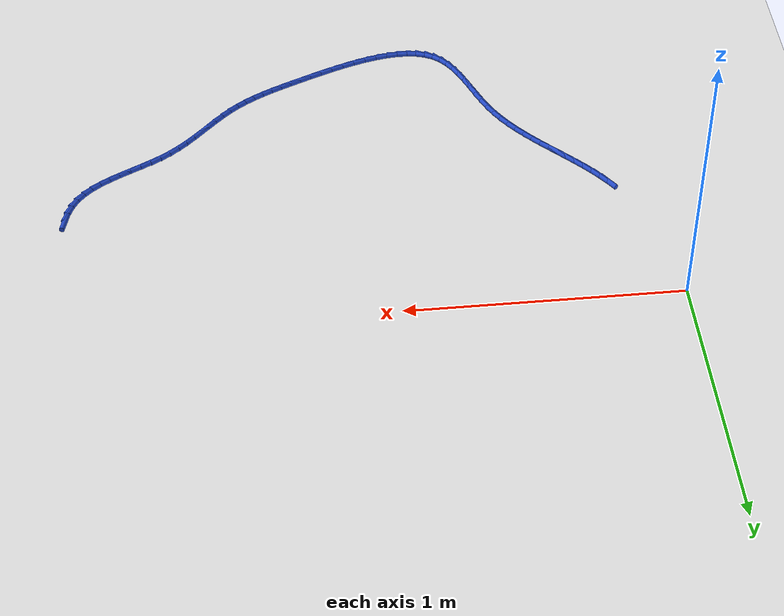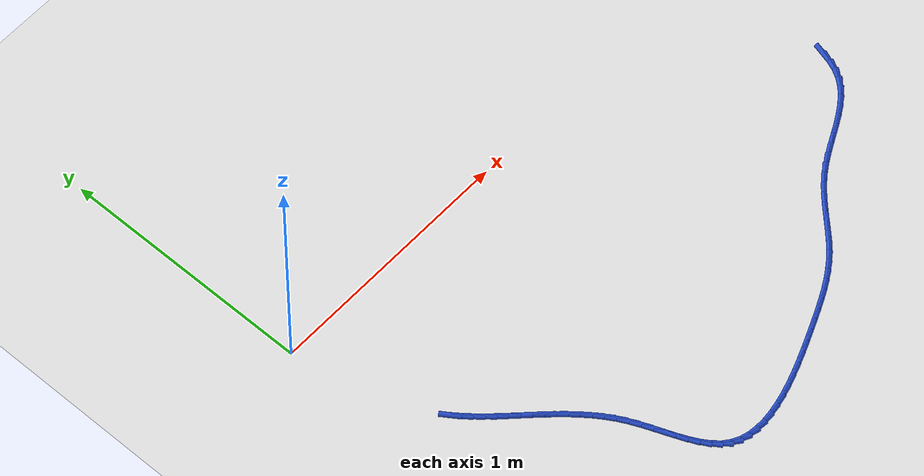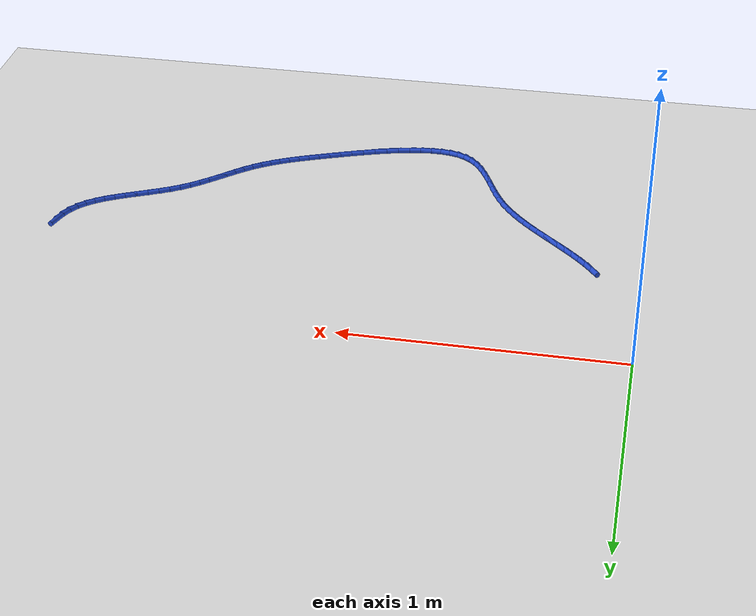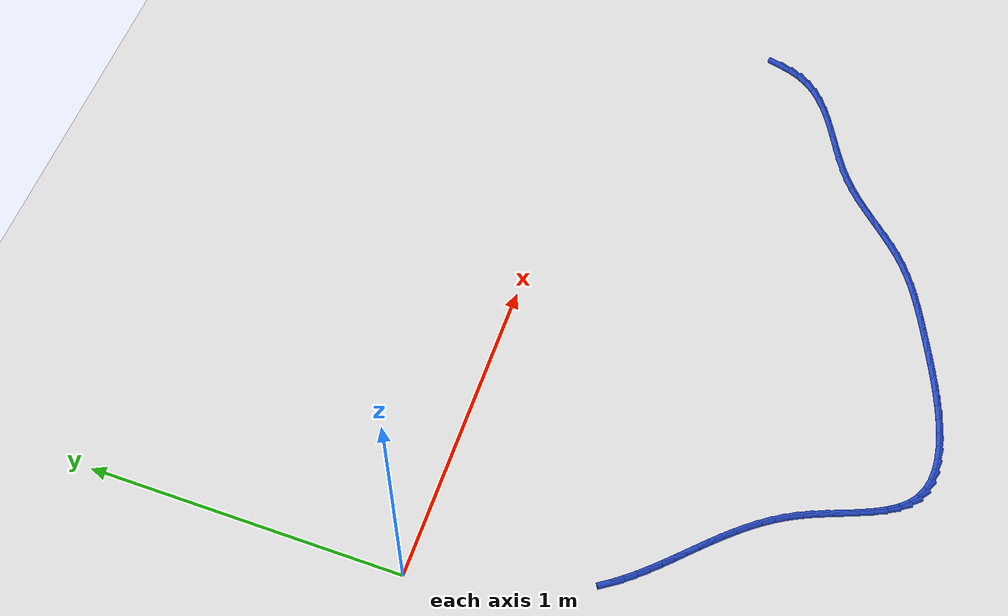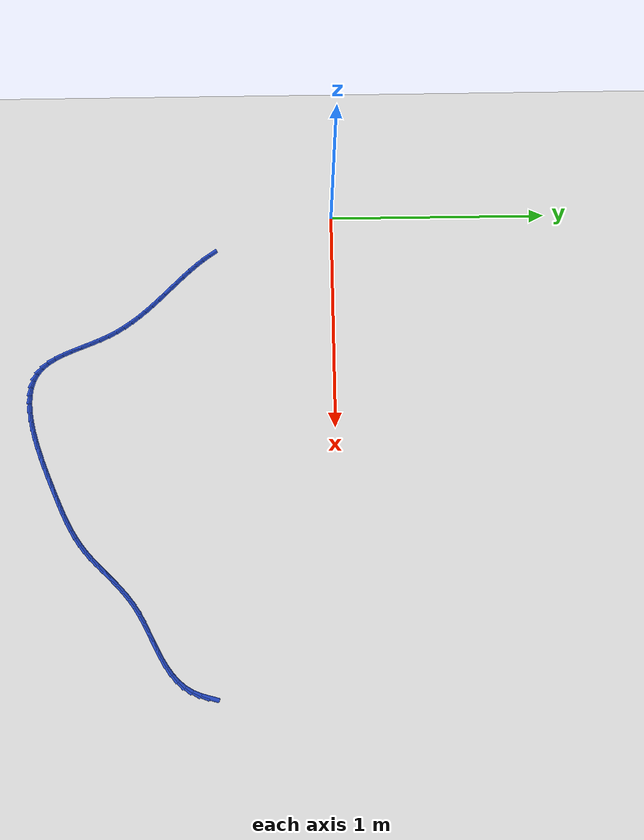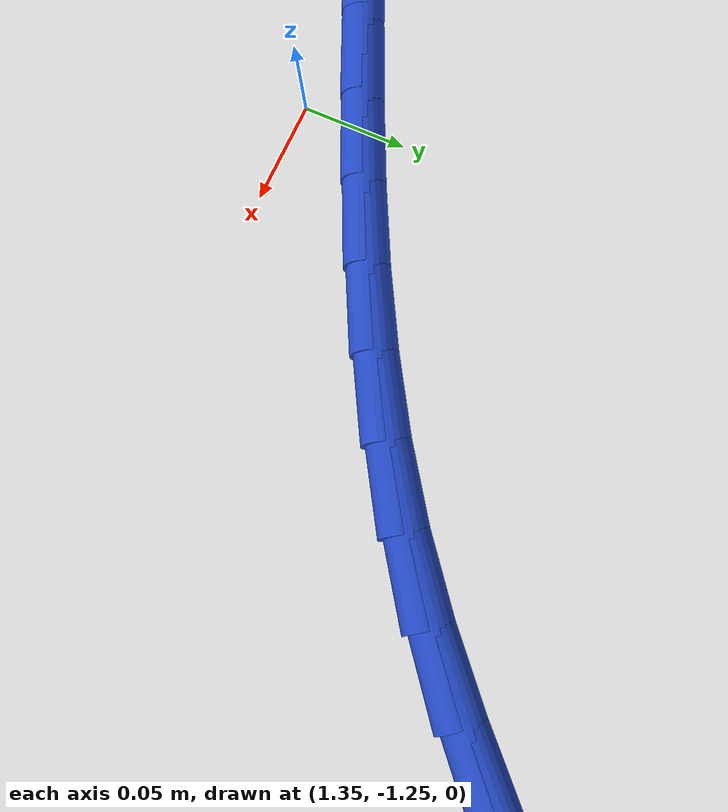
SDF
<sdf version="1.6">
 <world name="default">
  <model name="ground_plane">
   <static>1</static>
   <link name="link">
    <collision name="collision">
     <geometry><plane><normal>0 0 1</normal><size>100 100</size></plane></geometry>
     <surface><friction><ode><mu>100</mu><mu2>50</mu2></ode></friction></surface>
    </collision>
    <visual name="visual">
     <cast_shadows>0</cast_shadows>
     <geometry><plane><normal>0 0 1</normal><size>100 100</size></plane></geometry>
     <material>
      <script><uri>file://media/materials/scripts/gazebo.material</uri><name>Gazebo/WhiteGlow</name></script>
     </material>
    </visual>
   </link>
  </model>
  <model name="line">
   <link name="link_119">
    <pose>2.165678816490199 -0.5529607200042893 0.01 0 1.57 1.3038465819567113</pose>
    <collision name="collision">
     <geometry><cylinder><radius>0.01</radius><length>0.08</length></cylinder></geometry>
    </collision>
    <visual name="visual">
     <material>
      <script><name>Gazebo/Blue</name><uri>file://media/materials/scripts/gazebo.material</uri></script>
     </material>
     <geometry><cylinder><radius>0.01</radius><length>0.08</length></cylinder></geometry>
    </visual>
   </link>
   <link name="link_120">
    <pose>2.1549382510173456 -0.5922348280297937 0.01 0 1.57 1.1849890345842276</pose>
    <collision name="collision">
     <geometry><cylinder><radius>0.01</radius><length>0.08</length></cylinder></geometry>
    </collision>
    <visual name="visual">
     <material>
      <script><name>Gazebo/Blue</name><uri>file://media/materials/scripts/gazebo.material</uri></script>
     </material>
     <geometry><cylinder><radius>0.01</radius><length>0.08</length></cylinder></geometry>
    </visual>
   </link>
   <link name="link_121">
    <pose>2.1401317074821624 -0.6286895844554218 0.01 0 1.57 1.0369615029037529</pose>
    <collision name="collision">
     <geometry><cylinder><radius>0.01</radius><length>0.08</length></cylinder></geometry>
    </collision>
    <visual name="visual">
     <material>
      <script><name>Gazebo/Blue</name><uri>file://media/materials/scripts/gazebo.material</uri></script>
     </material>
     <geometry><cylinder><radius>0.01</radius><length>0.08</length></cylinder></geometry>
    </visual>
   </link>
   <link name="link_122">
    <pose>2.1206914307939337 -0.6615790042426363 0.01 0 1.57 0.8798860520545387</pose>
    <collision name="collision">
     <geometry><cylinder><radius>0.01</radius><length>0.08</length></cylinder></geometry>
    </collision>
    <visual name="visual">
     <material>
      <script><name>Gazebo/Blue</name><uri>file://media/materials/scripts/gazebo.material</uri></script>
     </material>
     <geometry><cylinder><radius>0.01</radius><length>0.08</length></cylinder></geometry>
    </visual>
   </link>
   <link name="link_123">
    <pose>2.0965847565018136 -0.6907332177284001 0.01 0 1.57 0.7457918632671487</pose>
    <collision name="collision">
     <geometry><cylinder><radius>0.01</radius><length>0.08</length></cylinder></geometry>
    </collision>
    <visual name="visual">
     <material>
      <script><name>Gazebo/Blue</name><uri>file://media/materials/scripts/gazebo.material</uri></script>
     </material>
     <geometry><cylinder><radius>0.01</radius><length>0.08</length></cylinder></geometry>
    </visual>
   </link>
   <link name="link_124">
    <pose>2.068459195376105 -0.7167146786613408 0.01 0 1.57 0.6400086010144025</pose>
    <collision name="collision">
     <geometry><cylinder><radius>0.01</radius><length>0.08</length></cylinder></geometry>
    </collision>
    <visual name="visual">
     <material>
      <script><name>Gazebo/Blue</name><uri>file://media/materials/scripts/gazebo.material</uri></script>
     </material>
     <geometry><cylinder><radius>0.01</radius><length>0.08</length></cylinder></geometry>
    </visual>
   </link>
   <link name="link_125">
    <pose>2.037006244468867 -0.7401331994455039 0.01 0 1.57 0.5619645637278768</pose>
    <collision name="collision">
     <geometry><cylinder><radius>0.01</radius><length>0.08</length></cylinder></geometry>
    </collision>
    <visual name="visual">
     <material>
      <script><name>Gazebo/Blue</name><uri>file://media/materials/scripts/gazebo.material</uri></script>
     </material>
     <geometry><cylinder><radius>0.01</radius><length>0.08</length></cylinder></geometry>
    </visual>
   </link>
   <link name="link_126">
    <pose>2.0029174008321577 -0.7615985924849348 0.01 0 1.57 0.509293092011991</pose>
    <collision name="collision">
     <geometry><cylinder><radius>0.01</radius><length>0.08</length></cylinder></geometry>
    </collision>
    <visual name="visual">
     <material>
      <script><name>Gazebo/Blue</name><uri>file://media/materials/scripts/gazebo.material</uri></script>
     </material>
     <geometry><cylinder><radius>0.01</radius><length>0.08</length></cylinder></geometry>
    </visual>
   </link>
   <link name="link_127">
    <pose>1.966884161518037 -0.7817206701836791 0.01 0 1.57 0.4795147115686511</pose>
    <collision name="collision">
     <geometry><cylinder><radius>0.01</radius><length>0.08</length></cylinder></geometry>
    </collision>
    <visual name="visual">
     <material>
      <script><name>Gazebo/Blue</name><uri>file://media/materials/scripts/gazebo.material</uri></script>
     </material>
     <geometry><cylinder><radius>0.01</radius><length>0.08</length></cylinder></geometry>
    </visual>
   </link>
   <link name="link_128">
    <pose>1.9295980235785635 -0.8011092449457824 0.01 0 1.57 0.4708318705083907</pose>
    <collision name="collision">
     <geometry><cylinder><radius>0.01</radius><length>0.08</length></cylinder></geometry>
    </collision>
    <visual name="visual">
     <material>
      <script><name>Gazebo/Blue</name><uri>file://media/materials/scripts/gazebo.material</uri></script>
     </material>
     <geometry><cylinder><radius>0.01</radius><length>0.08</length></cylinder></geometry>
    </visual>
   </link>
   <link name="link_129">
    <pose>1.891750484065797 -0.8203741291752901 0.01 0 1.57 0.48239365470131074</pose>
    <collision name="collision">
     <geometry><cylinder><radius>0.01</radius><length>0.08</length></cylinder></geometry>
    </collision>
    <visual name="visual">
     <material>
      <script><name>Gazebo/Blue</name><uri>file://media/materials/scripts/gazebo.material</uri></script>
     </material>
     <geometry><cylinder><radius>0.01</radius><length>0.08</length></cylinder></geometry>
    </visual>
   </link>
   <link name="link_130">
    <pose>1.8540330400317961 -0.8401251352762479 0.01 0 1.57 0.5143026540021608</pose>
    <collision name="collision">
     <geometry><cylinder><radius>0.01</radius><length>0.08</length></cylinder></geometry>
    </collision>
    <visual name="visual">
     <material>
      <script><name>Gazebo/Blue</name><uri>file://media/materials/scripts/gazebo.material</uri></script>
     </material>
     <geometry><cylinder><radius>0.01</radius><length>0.08</length></cylinder></geometry>
    </visual>
   </link>
   <link name="link_131">
    <pose>1.81713718852862 -0.8609720756527015 0.01 0 1.57 0.5674607827327658</pose>
    <collision name="collision">
     <geometry><cylinder><radius>0.01</radius><length>0.08</length></cylinder></geometry>
    </collision>
    <visual name="visual">
     <material>
      <script><name>Gazebo/Blue</name><uri>file://media/materials/scripts/gazebo.material</uri></script>
     </material>
     <geometry><cylinder><radius>0.01</radius><length>0.08</length></cylinder></geometry>
    </visual>
   </link>
   <link name="link_132">
    <pose>1.7817544266083274 -0.8835247627086958 0.01 0 1.57 0.6387018153974733</pose>
    <collision name="collision">
     <geometry><cylinder><radius>0.01</radius><length>0.08</length></cylinder></geometry>
    </collision>
    <visual name="visual">
     <material>
      <script><name>Gazebo/Blue</name><uri>file://media/materials/scripts/gazebo.material</uri></script>
     </material>
     <geometry><cylinder><radius>0.01</radius><length>0.08</length></cylinder></geometry>
    </visual>
   </link>
   <link name="link_133">
    <pose>1.7484459371735086 -0.9082572468248192 0.01 0 1.57 0.7030364340273008</pose>
    <collision name="collision">
     <geometry><cylinder><radius>0.01</radius><length>0.08</length></cylinder></geometry>
    </collision>
    <visual name="visual">
     <material>
      <script><name>Gazebo/Blue</name><uri>file://media/materials/scripts/gazebo.material</uri></script>
     </material>
     <geometry><cylinder><radius>0.01</radius><length>0.08</length></cylinder></geometry>
    </visual>
   </link>
   <link name="link_134">
    <pose>1.7170365607289237 -0.9348764526758623 0.01 0 1.57 0.750860329333367</pose>
    <collision name="collision">
     <geometry><cylinder><radius>0.01</radius><length>0.08</length></cylinder></geometry>
    </collision>
    <visual name="visual">
     <material>
      <script><name>Gazebo/Blue</name><uri>file://media/materials/scripts/gazebo.material</uri></script>
     </material>
     <geometry><cylinder><radius>0.01</radius><length>0.08</length></cylinder></geometry>
    </visual>
   </link>
   <link name="link_135">
    <pose>1.6870927720443096 -0.9628201380416795 0.01 0 1.57 0.78181637285562</pose>
    <collision name="collision">
     <geometry><cylinder><radius>0.01</radius><length>0.08</length></cylinder></geometry>
    </collision>
    <visual name="visual">
     <material>
      <script><name>Gazebo/Blue</name><uri>file://media/materials/scripts/gazebo.material</uri></script>
     </material>
     <geometry><cylinder><radius>0.01</radius><length>0.08</length></cylinder></geometry>
    </visual>
   </link>
   <link name="link_136">
    <pose>1.6581807658942365 -0.9915257690015645 0.01 0 1.57 0.7957267611966407</pose>
    <collision name="collision">
     <geometry><cylinder><radius>0.01</radius><length>0.08</length></cylinder></geometry>
    </collision>
    <visual name="visual">
     <material>
      <script><name>Gazebo/Blue</name><uri>file://media/materials/scripts/gazebo.material</uri></script>
     </material>
     <geometry><cylinder><radius>0.01</radius><length>0.08</length></cylinder></geometry>
    </visual>
   </link>
   <link name="link_137">
    <pose>1.629866737053275 -1.020430811634813 0.01 0 1.57 0.7923137585358598</pose>
    <collision name="collision">
     <geometry><cylinder><radius>0.01</radius><length>0.08</length></cylinder></geometry>
    </collision>
    <visual name="visual">
     <material>
      <script><name>Gazebo/Blue</name><uri>file://media/materials/scripts/gazebo.material</uri></script>
     </material>
     <geometry><cylinder><radius>0.01</radius><length>0.08</length></cylinder></geometry>
    </visual>
   </link>
   <link name="link_138">
    <pose>1.6017168802959956 -1.048972732020719 0.01 0 1.57 0.7710649811614259</pose>
    <collision name="collision">
     <geometry><cylinder><radius>0.01</radius><length>0.08</length></cylinder></geometry>
    </collision>
    <visual name="visual">
     <material>
      <script><name>Gazebo/Blue</name><uri>file://media/materials/scripts/gazebo.material</uri></script>
     </material>
     <geometry><cylinder><radius>0.01</radius><length>0.08</length></cylinder></geometry>
    </visual>
   </link>
   <link name="link_139">
    <pose>1.5732973903969687 -1.0765889962385773 0.01 0 1.57 0.7312466353373269</pose>
    <collision name="collision">
     <geometry><cylinder><radius>0.01</radius><length>0.08</length></cylinder></geometry>
    </collision>
    <visual name="visual">
     <material>
      <script><name>Gazebo/Blue</name><uri>file://media/materials/scripts/gazebo.material</uri></script>
     </material>
     <geometry><cylinder><radius>0.01</radius><length>0.08</length></cylinder></geometry>
    </visual>
   </link>
   <link name="link_140">
    <pose>1.544174462130765 -1.1027170703676827 0.01 0 1.57 0.6729640810667431</pose>
    <collision name="collision">
     <geometry><cylinder><radius>0.01</radius><length>0.08</length></cylinder></geometry>
    </collision>
    <visual name="visual">
     <material>
      <script><name>Gazebo/Blue</name><uri>file://media/materials/scripts/gazebo.material</uri></script>
     </material>
     <geometry><cylinder><radius>0.01</radius><length>0.08</length></cylinder></geometry>
    </visual>
   </link>
   <link name="link_141">
    <pose>1.5139278123656326 -1.1268263748807035 0.01 0 1.57 0.6096983575979217</pose>
    <collision name="collision">
     <geometry><cylinder><radius>0.01</radius><length>0.08</length></cylinder></geometry>
    </collision>
    <visual name="visual">
     <material>
      <script><name>Gazebo/Blue</name><uri>file://media/materials/scripts/gazebo.material</uri></script>
     </material>
     <geometry><cylinder><radius>0.01</radius><length>0.08</length></cylinder></geometry>
    </visual>
   </link>
   <link name="link_142">
    <pose>1.482347787395512 -1.1488840738457722 0.01 0 1.57 0.5535399413404652</pose>
    <collision name="collision">
     <geometry><cylinder><radius>0.01</radius><length>0.08</length></cylinder></geometry>
    </collision>
    <visual name="visual">
     <material>
      <script><name>Gazebo/Blue</name><uri>file://media/materials/scripts/gazebo.material</uri></script>
     </material>
     <geometry><cylinder><radius>0.01</radius><length>0.08</length></cylinder></geometry>
    </visual>
   </link>
   <link name="link_143">
    <pose>1.449391228548575 -1.1692507798565062 0.01 0 1.57 0.506023273870381</pose>
    <collision name="collision">
     <geometry><cylinder><radius>0.01</radius><length>0.08</length></cylinder></geometry>
    </collision>
    <visual name="visual">
     <material>
      <script><name>Gazebo/Blue</name><uri>file://media/materials/scripts/gazebo.material</uri></script>
     </material>
     <geometry><cylinder><radius>0.01</radius><length>0.08</length></cylinder></geometry>
    </visual>
   </link>
   <link name="link_144">
    <pose>1.415019519101763 -1.1882978386977858 0.01 0 1.57 0.4677928704016635</pose>
    <collision name="collision">
     <geometry><cylinder><radius>0.01</radius><length>0.08</length></cylinder></geometry>
    </collision>
    <visual name="visual">
     <material>
      <script><name>Gazebo/Blue</name><uri>file://media/materials/scripts/gazebo.material</uri></script>
     </material>
     <geometry><cylinder><radius>0.01</radius><length>0.08</length></cylinder></geometry>
    </visual>
   </link>
   <link name="link_145">
    <pose>1.379194042332018 -1.206396596154492 0.01 0 1.57 0.43897468475304524</pose>
    <collision name="collision">
     <geometry><cylinder><radius>0.01</radius><length>0.08</length></cylinder></geometry>
    </collision>
    <visual name="visual">
     <material>
      <script><name>Gazebo/Blue</name><uri>file://media/materials/scripts/gazebo.material</uri></script>
     </material>
     <geometry><cylinder><radius>0.01</radius><length>0.08</length></cylinder></geometry>
    </visual>
   </link>
   <link name="link_146">
    <pose>1.3418761815162803 -1.223918398011505 0.01 0 1.57 0.4192992329119049</pose>
    <collision name="collision">
     <geometry><cylinder><radius>0.01</radius><length>0.08</length></cylinder></geometry>
    </collision>
    <visual name="visual">
     <material>
      <script><name>Gazebo/Blue</name><uri>file://media/materials/scripts/gazebo.material</uri></script>
     </material>
     <geometry><cylinder><radius>0.01</radius><length>0.08</length></cylinder></geometry>
    </visual>
   </link>
   <link name="link_147">
    <pose>1.3030273199314928 -1.2412345900537056 0.01 0 1.57 0.4082246243195699</pose>
    <collision name="collision">
     <geometry><cylinder><radius>0.01</radius><length>0.08</length></cylinder></geometry>
    </collision>
    <visual name="visual">
     <material>
      <script><name>Gazebo/Blue</name><uri>file://media/materials/scripts/gazebo.material</uri></script>
     </material>
     <geometry><cylinder><radius>0.01</radius><length>0.08</length></cylinder></geometry>
    </visual>
   </link>
   <link name="link_148">
    <pose>1.2626088686113968 -1.2587164626124494 0.01 0 1.57 0.4022287212309081</pose>
    <collision name="collision">
     <geometry><cylinder><radius>0.01</radius><length>0.08</length></cylinder></geometry>
    </collision>
    <visual name="visual">
     <material>
      <script><name>Gazebo/Blue</name><uri>file://media/materials/scripts/gazebo.material</uri></script>
     </material>
     <geometry><cylinder><radius>0.01</radius><length>0.08</length></cylinder></geometry>
    </visual>
   </link>
   <link name="link_149">
    <pose>1.2206711186497947 -1.2765577382655897 0.01 0 1.57 0.3919387423508584</pose>
    <collision name="collision">
     <geometry><cylinder><radius>0.01</radius><length>0.08</length></cylinder></geometry>
    </collision>
    <visual name="visual">
     <material>
      <script><name>Gazebo/Blue</name><uri>file://media/materials/scripts/gazebo.material</uri></script>
     </material>
     <geometry><cylinder><radius>0.01</radius><length>0.08</length></cylinder></geometry>
    </visual>
   </link>
   <link name="link_150">
    <pose>1.1775504982975484 -1.2943804845748015 0.01 0 1.57 0.37554189415330375</pose>
    <collision name="collision">
     <geometry><cylinder><radius>0.01</radius><length>0.08</length></cylinder></geometry>
    </collision>
    <visual name="visual">
     <material>
      <script><name>Gazebo/Blue</name><uri>file://media/materials/scripts/gazebo.material</uri></script>
     </material>
     <geometry><cylinder><radius>0.01</radius><length>0.08</length></cylinder></geometry>
    </visual>
   </link>
   <link name="link_151">
    <pose>1.133640905437484 -1.3116919542216168 0.01 0 1.57 0.35268576150205555</pose>
    <collision name="collision">
     <geometry><cylinder><radius>0.01</radius><length>0.08</length></cylinder></geometry>
    </collision>
    <visual name="visual">
     <material>
      <script><name>Gazebo/Blue</name><uri>file://media/materials/scripts/gazebo.material</uri></script>
     </material>
     <geometry><cylinder><radius>0.01</radius><length>0.08</length></cylinder></geometry>
    </visual>
   </link>
   <link name="link_152">
    <pose>1.0893362379524316 -1.3279993998875697 0.01 0 1.57 0.3226046826940589</pose>
    <collision name="collision">
     <geometry><cylinder><radius>0.01</radius><length>0.08</length></cylinder></geometry>
    </collision>
    <visual name="visual">
     <material>
      <script><name>Gazebo/Blue</name><uri>file://media/materials/scripts/gazebo.material</uri></script>
     </material>
     <geometry><cylinder><radius>0.01</radius><length>0.08</length></cylinder></geometry>
    </visual>
   </link>
   <link name="link_153">
    <pose>1.0450303937252172 -1.3428100742541913 0.01 0 1.57 0.2840703062573568</pose>
    <collision name="collision">
     <geometry><cylinder><radius>0.01</radius><length>0.08</length></cylinder></geometry>
    </collision>
    <visual name="visual">
     <material>
      <script><name>Gazebo/Blue</name><uri>file://media/materials/scripts/gazebo.material</uri></script>
     </material>
     <geometry><cylinder><radius>0.01</radius><length>0.08</length></cylinder></geometry>
    </visual>
   </link>
   <link name="link_154">
    <pose>1.00111727063867 -1.3556312300030158 0.01 0 1.57 0.23529346337358908</pose>
    <collision name="collision">
     <geometry><cylinder><radius>0.01</radius><length>0.08</length></cylinder></geometry>
    </collision>
    <visual name="visual">
     <material>
      <script><name>Gazebo/Blue</name><uri>file://media/materials/scripts/gazebo.material</uri></script>
     </material>
     <geometry><cylinder><radius>0.01</radius><length>0.08</length></cylinder></geometry>
    </visual>
   </link>
   <link name="link_155">
    <pose>0.9579907665756168 -1.365970119815574 0.01 0 1.57 0.17378525205652942</pose>
    <collision name="collision">
     <geometry><cylinder><radius>0.01</radius><length>0.08</length></cylinder></geometry>
    </collision>
    <visual name="visual">
     <material>
      <script><name>Gazebo/Blue</name><uri>file://media/materials/scripts/gazebo.material</uri></script>
     </material>
     <geometry><cylinder><radius>0.01</radius><length>0.08</length></cylinder></geometry>
    </visual>
   </link>
   <link name="link_156">
    <pose>0.9160447794188864 -1.3733339963734 0.01 0 1.57 0.09620848093766571</pose>
    <collision name="collision">
     <geometry><cylinder><radius>0.01</radius><length>0.08</length></cylinder></geometry>
    </collision>
    <visual name="visual">
     <material>
      <script><name>Gazebo/Blue</name><uri>file://media/materials/scripts/gazebo.material</uri></script>
     </material>
     <geometry><cylinder><radius>0.01</radius><length>0.08</length></cylinder></geometry>
    </visual>
   </link>
   <link name="link_157">
    <pose>0.8756732070513062 -1.3772301123580257 0.01 0 1.57 -0.0016767286737736948</pose>
    <collision name="collision">
     <geometry><cylinder><radius>0.01</radius><length>0.08</length></cylinder></geometry>
    </collision>
    <visual name="visual">
     <material>
      <script><name>Gazebo/Blue</name><uri>file://media/materials/scripts/gazebo.material</uri></script>
     </material>
     <geometry><cylinder><radius>0.01</radius><length>0.08</length></cylinder></geometry>
    </visual>
   </link>
   <link name="link_158">
    <pose>0.8372699473557043 -1.3771657204509835 0.01 0 1.57 -0.12469690728914873</pose>
    <collision name="collision">
     <geometry><cylinder><radius>0.01</radius><length>0.08</length></cylinder></geometry>
    </collision>
    <visual name="visual">
     <material>
      <script><name>Gazebo/Blue</name><uri>file://media/materials/scripts/gazebo.material</uri></script>
     </material>
     <geometry><cylinder><radius>0.01</radius><length>0.08</length></cylinder></geometry>
    </visual>
   </link>
   <link name="link_159">
    <pose>0.8012288982149083 -1.3726480733338067 0.01 0 1.57 -0.27701222140242343</pose>
    <collision name="collision">
     <geometry><cylinder><radius>0.01</radius><length>0.08</length></cylinder></geometry>
    </collision>
    <visual name="visual">
     <material>
      <script><name>Gazebo/Blue</name><uri>file://media/materials/scripts/gazebo.material</uri></script>
     </material>
     <geometry><cylinder><radius>0.01</radius><length>0.08</length></cylinder></geometry>
    </visual>
   </link>
   <link name="link_160">
    <pose>0.7679439575117466 -1.3631844236880277 0.01 0 1.57 -0.459255919323022</pose>
    <collision name="collision">
     <geometry><cylinder><radius>0.01</radius><length>0.08</length></cylinder></geometry>
    </collision>
    <visual name="visual">
     <material>
      <script><name>Gazebo/Blue</name><uri>file://media/materials/scripts/gazebo.material</uri></script>
     </material>
     <geometry><cylinder><radius>0.01</radius><length>0.08</length></cylinder></geometry>
    </visual>
   </link>
   <link name="link_161">
    <pose>0.7378090231290464 -1.3482820241951785 0.01 0 1.57 -0.663655226764171</pose>
    <collision name="collision">
     <geometry><cylinder><radius>0.01</radius><length>0.08</length></cylinder></geometry>
    </collision>
    <visual name="visual">
     <material>
      <script><name>Gazebo/Blue</name><uri>file://media/materials/scripts/gazebo.material</uri></script>
     </material>
     <geometry><cylinder><radius>0.01</radius><length>0.08</length></cylinder></geometry>
    </visual>
   </link>
   <link name="link_162">
    <pose>0.711199263991687 -1.3274737643067085 0.01 0 1.57 -0.851803574735139</pose>
    <collision name="collision">
     <geometry><cylinder><radius>0.01</radius><length>0.08</length></cylinder></geometry>
    </collision>
    <visual name="visual">
     <material>
      <script><name>Gazebo/Blue</name><uri>file://media/materials/scripts/gazebo.material</uri></script>
     </material>
     <geometry><cylinder><radius>0.01</radius><length>0.08</length></cylinder></geometry>
    </visual>
   </link>
   <link name="link_163">
    <pose>0.6879976220997687 -1.3009663087289784 0.01 0 1.57 -0.9919464641128584</pose>
    <collision name="collision">
     <geometry><cylinder><radius>0.01</radius><length>0.08</length></cylinder></geometry>
    </collision>
    <visual name="visual">
     <material>
      <script><name>Gazebo/Blue</name><uri>file://media/materials/scripts/gazebo.material</uri></script>
     </material>
     <geometry><cylinder><radius>0.01</radius><length>0.08</length></cylinder></geometry>
    </visual>
   </link>
   <link name="link_164">
    <pose>0.667558033914307 -1.2696904411143246 0.01 0 1.57 -1.0888285169567165</pose>
    <collision name="collision">
     <geometry><cylinder><radius>0.01</radius><length>0.08</length></cylinder></geometry>
    </collision>
    <visual name="visual">
     <material>
      <script><name>Gazebo/Blue</name><uri>file://media/materials/scripts/gazebo.material</uri></script>
     </material>
     <geometry><cylinder><radius>0.01</radius><length>0.08</length></cylinder></geometry>
    </visual>
   </link>
   <link name="link_165">
    <pose>0.6492083392401554 -1.2346126670154336 0.01 0 1.57 -1.1507748148180441</pose>
    <collision name="collision">
     <geometry><cylinder><radius>0.01</radius><length>0.08</length></cylinder></geometry>
    </collision>
    <visual name="visual">
     <material>
      <script><name>Gazebo/Blue</name><uri>file://media/materials/scripts/gazebo.material</uri></script>
     </material>
     <geometry><cylinder><radius>0.01</radius><length>0.08</length></cylinder></geometry>
    </visual>
   </link>
   <link name="link_166">
    <pose>0.6322763778821677 -1.1966994919849936 0.01 0 1.57 -1.1843760534590244</pose>
    <collision name="collision">
     <geometry><cylinder><radius>0.01</radius><length>0.08</length></cylinder></geometry>
    </collision>
    <visual name="visual">
     <material>
      <script><name>Gazebo/Blue</name><uri>file://media/materials/scripts/gazebo.material</uri></script>
     </material>
     <geometry><cylinder><radius>0.01</radius><length>0.08</length></cylinder></geometry>
    </visual>
   </link>
   <link name="link_167">
    <pose>0.6160899896451976 -1.1569174215756926 0.01 0 1.57 -1.193701987705666</pose>
    <collision name="collision">
     <geometry><cylinder><radius>0.01</radius><length>0.08</length></cylinder></geometry>
    </collision>
    <visual name="visual">
     <material>
      <script><name>Gazebo/Blue</name><uri>file://media/materials/scripts/gazebo.material</uri></script>
     </material>
     <geometry><cylinder><radius>0.01</radius><length>0.08</length></cylinder></geometry>
    </visual>
   </link>
   <link name="link_168">
    <pose>0.5999770143340978 -1.1162329613402155 0.01 0 1.57 -1.1804903596105911</pose>
    <collision name="collision">
     <geometry><cylinder><radius>0.01</radius><length>0.08</length></cylinder></geometry>
    </collision>
    <visual name="visual">
     <material>
      <script><name>Gazebo/Blue</name><uri>file://media/materials/scripts/gazebo.material</uri></script>
     </material>
     <geometry><cylinder><radius>0.01</radius><length>0.08</length></cylinder></geometry>
    </visual>
   </link>
   <link name="link_169">
    <pose>0.5832652917537225 -1.0756126168312519 0.01 0 1.57 -1.1444346989604441</pose>
    <collision name="collision">
     <geometry><cylinder><radius>0.01</radius><length>0.08</length></cylinder></geometry>
    </collision>
    <visual name="visual">
     <material>
      <script><name>Gazebo/Blue</name><uri>file://media/materials/scripts/gazebo.material</uri></script>
     </material>
     <geometry><cylinder><radius>0.01</radius><length>0.08</length></cylinder></geometry>
    </visual>
   </link>
   <link name="link_170">
    <pose>0.565282661708925 -1.0360228936014881 0.01 0 1.57 -1.085716642414434</pose>
    <collision name="collision">
     <geometry><cylinder><radius>0.01</radius><length>0.08</length></cylinder></geometry>
    </collision>
    <visual name="visual">
     <material>
      <script><name>Gazebo/Blue</name><uri>file://media/materials/scripts/gazebo.material</uri></script>
     </material>
     <geometry><cylinder><radius>0.01</radius><length>0.08</length></cylinder></geometry>
    </visual>
   </link>
   <link name="link_171">
    <pose>0.5454224712536788 -0.9983435628222947 0.01 0 1.57 -1.022202111139791</pose>
    <collision name="collision">
     <geometry><cylinder><radius>0.01</radius><length>0.08</length></cylinder></geometry>
    </collision>
    <visual name="visual">
     <material>
      <script><name>Gazebo/Blue</name><uri>file://media/materials/scripts/gazebo.material</uri></script>
     </material>
     <geometry><cylinder><radius>0.01</radius><length>0.08</length></cylinder></geometry>
    </visual>
   </link>
   <link name="link_172">
    <pose>0.5236424540048626 -0.9627071238742868 0.01 0 1.57 -0.9647635027645869</pose>
    <collision name="collision">
     <geometry><cylinder><radius>0.01</radius><length>0.08</length></cylinder></geometry>
    </collision>
    <visual name="visual">
     <material>
      <script><name>Gazebo/Blue</name><uri>file://media/materials/scripts/gazebo.material</uri></script>
     </material>
     <geometry><cylinder><radius>0.01</radius><length>0.08</length></cylinder></geometry>
    </visual>
   </link>
   <link name="link_173">
    <pose>0.5001885151994324 -0.9288645246683356 0.01 0 1.57 -0.9144626290440045</pose>
    <collision name="collision">
     <geometry><cylinder><radius>0.01</radius><length>0.08</length></cylinder></geometry>
    </collision>
    <visual name="visual">
     <material>
      <script><name>Gazebo/Blue</name><uri>file://media/materials/scripts/gazebo.material</uri></script>
     </material>
     <geometry><cylinder><radius>0.01</radius><length>0.08</length></cylinder></geometry>
    </visual>
   </link>
   <link name="link_174">
    <pose>0.4753088701614144 -0.8965636544618724 0.01 0 1.57 -0.8719912389653642</pose>
    <collision name="collision">
     <geometry><cylinder><radius>0.01</radius><length>0.08</length></cylinder></geometry>
    </collision>
    <visual name="visual">
     <material>
      <script><name>Gazebo/Blue</name><uri>file://media/materials/scripts/gazebo.material</uri></script>
     </material>
     <geometry><cylinder><radius>0.01</radius><length>0.08</length></cylinder></geometry>
    </visual>
   </link>
   <link name="link_175">
    <pose>0.4492517342148349 -0.8655524025123296 0.01 0 1.57 -0.8377961667887245</pose>
    <collision name="collision">
     <geometry><cylinder><radius>0.01</radius><length>0.08</length></cylinder></geometry>
    </collision>
    <visual name="visual">
     <material>
      <script><name>Gazebo/Blue</name><uri>file://media/materials/scripts/gazebo.material</uri></script>
     </material>
     <geometry><cylinder><radius>0.01</radius><length>0.08</length></cylinder></geometry>
    </visual>
   </link>
   <link name="link_176">
    <pose>0.4222653226837203 -0.8355786580771382 0.01 0 1.57 -0.8121414816661892</pose>
    <collision name="collision">
     <geometry><cylinder><radius>0.01</radius><length>0.08</length></cylinder></geometry>
    </collision>
    <visual name="visual">
     <material>
      <script><name>Gazebo/Blue</name><uri>file://media/materials/scripts/gazebo.material</uri></script>
     </material>
     <geometry><cylinder><radius>0.01</radius><length>0.08</length></cylinder></geometry>
    </visual>
   </link>
   <link name="link_177">
    <pose>0.394597850892097 -0.8063903104137307 0.01 0 1.57 -0.7951721664407564</pose>
    <collision name="collision">
     <geometry><cylinder><radius>0.01</radius><length>0.08</length></cylinder></geometry>
    </collision>
    <visual name="visual">
     <material>
      <script><name>Gazebo/Blue</name><uri>file://media/materials/scripts/gazebo.material</uri></script>
     </material>
     <geometry><cylinder><radius>0.01</radius><length>0.08</length></cylinder></geometry>
    </visual>
   </link>
   <link name="link_178">
    <pose>0.3664975341639909 -0.7777352487795379 0.01 0 1.57 -0.7869679086553599</pose>
    <collision name="collision">
     <geometry><cylinder><radius>0.01</radius><length>0.08</length></cylinder></geometry>
    </collision>
    <visual name="visual">
     <material>
      <script><name>Gazebo/Blue</name><uri>file://media/materials/scripts/gazebo.material</uri></script>
     </material>
     <geometry><cylinder><radius>0.01</radius><length>0.08</length></cylinder></geometry>
    </visual>
   </link>
   <link name="link_179">
    <pose>0.3382125878234288 -0.7493613624319925 0.01 0 1.57 -0.7875807568326284</pose>
    <collision name="collision">
     <geometry><cylinder><radius>0.01</radius><length>0.08</length></cylinder></geometry>
    </collision>
    <visual name="visual">
     <material>
      <script><name>Gazebo/Blue</name><uri>file://media/materials/scripts/gazebo.material</uri></script>
     </material>
     <geometry><cylinder><radius>0.01</radius><length>0.08</length></cylinder></geometry>
    </visual>
   </link>
   <link name="link_180">
    <pose>0.3099912271944367 -0.7210165406285255 0.01 0 1.57 -0.7970537685698548</pose>
    <collision name="collision">
     <geometry><cylinder><radius>0.01</radius><length>0.08</length></cylinder></geometry>
    </collision>
    <visual name="visual">
     <material>
      <script><name>Gazebo/Blue</name><uri>file://media/materials/scripts/gazebo.material</uri></script>
     </material>
     <geometry><cylinder><radius>0.01</radius><length>0.08</length></cylinder></geometry>
    </visual>
   </link>
   <link name="link_181">
    <pose>0.28208166760104103 -0.6924486726265688 0.01 0 1.57 -0.8154193695668637</pose>
    <collision name="collision">
     <geometry><cylinder><radius>0.01</radius><length>0.08</length></cylinder></geometry>
    </collision>
    <visual name="visual">
     <material>
      <script><name>Gazebo/Blue</name><uri>file://media/materials/scripts/gazebo.material</uri></script>
     </material>
     <geometry><cylinder><radius>0.01</radius><length>0.08</length></cylinder></geometry>
    </visual>
   </link>
   <link name="link_182">
    <pose>0.2547321243672681 -0.6634056476835544 0.01 0 1.57 -0.8426767491914737</pose>
    <collision name="collision">
     <geometry><cylinder><radius>0.01</radius><length>0.08</length></cylinder></geometry>
    </collision>
    <visual name="visual">
     <material>
      <script><name>Gazebo/Blue</name><uri>file://media/materials/scripts/gazebo.material</uri></script>
     </material>
     <geometry><cylinder><radius>0.01</radius><length>0.08</length></cylinder></geometry>
    </visual>
   </link>
   <link name="link_183">
    <pose>0.22819081281714418 -0.6336353550569134 0.01 0 1.57 -0.8787483547316945</pose>
    <collision name="collision">
     <geometry><cylinder><radius>0.01</radius><length>0.08</length></cylinder></geometry>
    </collision>
    <visual name="visual">
     <material>
      <script><name>Gazebo/Blue</name><uri>file://media/materials/scripts/gazebo.material</uri></script>
     </material>
     <geometry><cylinder><radius>0.01</radius><length>0.08</length></cylinder></geometry>
    </visual>
   </link>
   <link name="link_184">
    <pose>0.2027059482746957 -0.6028856840040783 0.01 0 1.57 -0.9231835758422244</pose>
    <collision name="collision">
     <geometry><cylinder><radius>0.01</radius><length>0.08</length></cylinder></geometry>
    </collision>
    <visual name="visual">
     <material>
      <script><name>Gazebo/Blue</name><uri>file://media/materials/scripts/gazebo.material</uri></script>
     </material>
     <geometry><cylinder><radius>0.01</radius><length>0.08</length></cylinder></geometry>
    </visual>
   </link>
   <link name="link_185">
    <pose>0.17852078803508195 -0.5709135234017806 0.01 0 1.57 -0.9708643115477346</pose>
    <collision name="collision">
     <geometry><cylinder><radius>0.01</radius><length>0.08</length></cylinder></geometry>
    </collision>
    <visual name="visual">
     <material>
      <script><name>Gazebo/Blue</name><uri>file://media/materials/scripts/gazebo.material</uri></script>
     </material>
     <geometry><cylinder><radius>0.01</radius><length>0.08</length></cylinder></geometry>
    </visual>
   </link>
  </model>
 </world>
</sdf>
